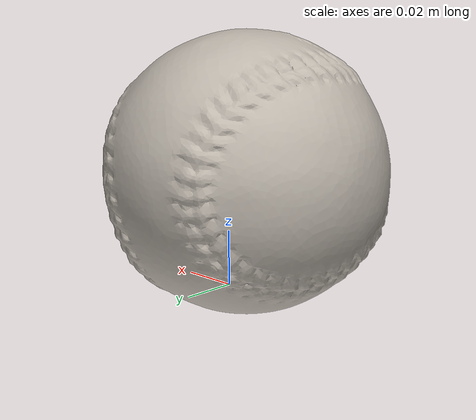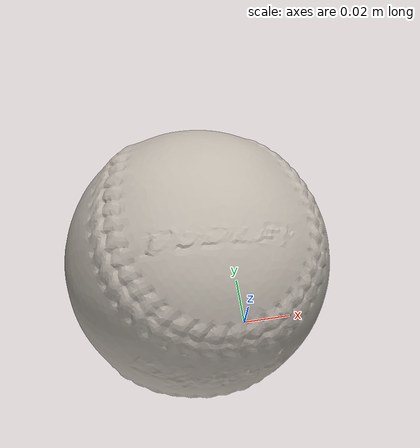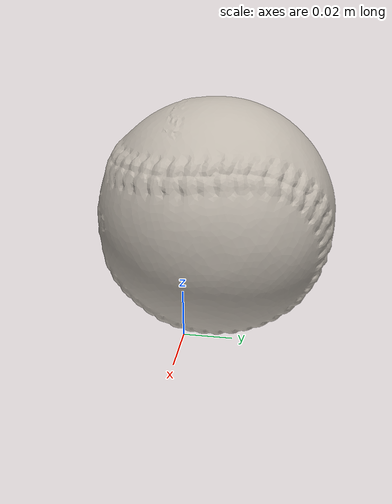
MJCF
<mujoco model="softball">
  <compiler angle="radian" meshdir="assets" texturedir="assets"/>
    <default>
        <default class="ycb_col">
            <geom contype="1" conaffinity="1" group="3" rgba=".4 .5 .6 1"/>
        </default>
        <default class="ycb_viz">
            <geom contype="0" conaffinity="0" type="mesh" mass="0"/>
        </default>
    </default>
  <asset>
    <texture type="2d" name="softball_tex" file="texture_map.png"/>
    <material name="softball_mat" texture="softball_tex" specular="0.5" shininess="0.5"/>
    <mesh file="textured.obj" name="softball"/>
    <mesh file="textured_collision_0.obj" name="softball_collision_0"/>
  </asset>
  <worldbody>
      <geom material="softball_mat" mesh="softball" class="ycb_viz"/>
      <geom mesh="softball_collision_0" class="ycb_col" conaffinity="1" condim="4" friction="0.1 0.1 0.1" mass="0.19100000000000006" rgba="1 1 1 1" solimp="0.99 0.99 0.01" solref=".001 0.1" type="mesh" group="3"/>
  </worldbody>
</mujoco>
